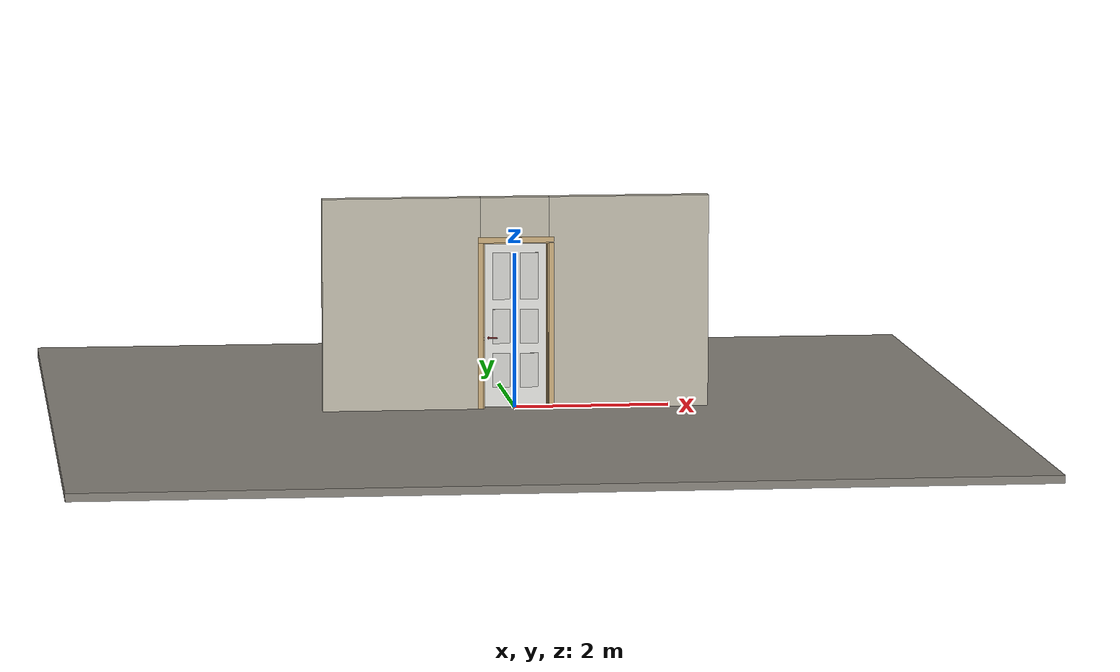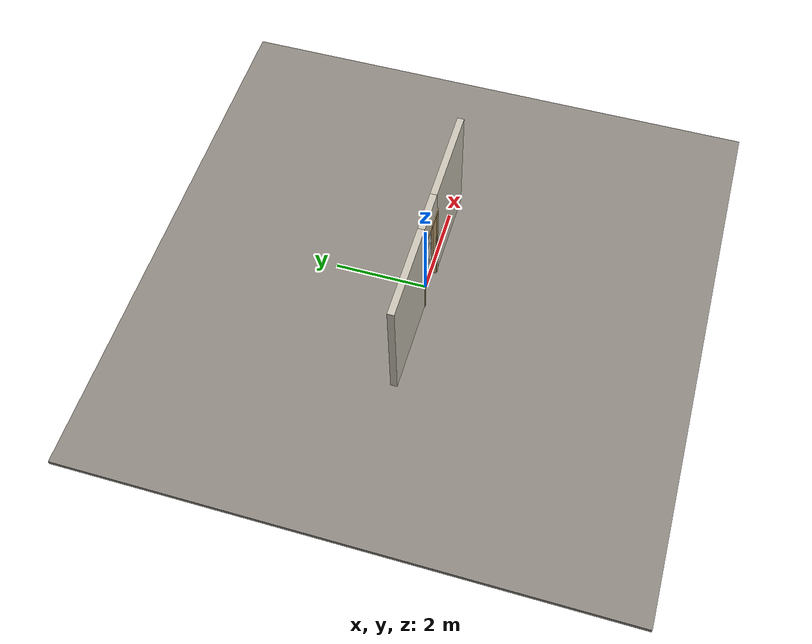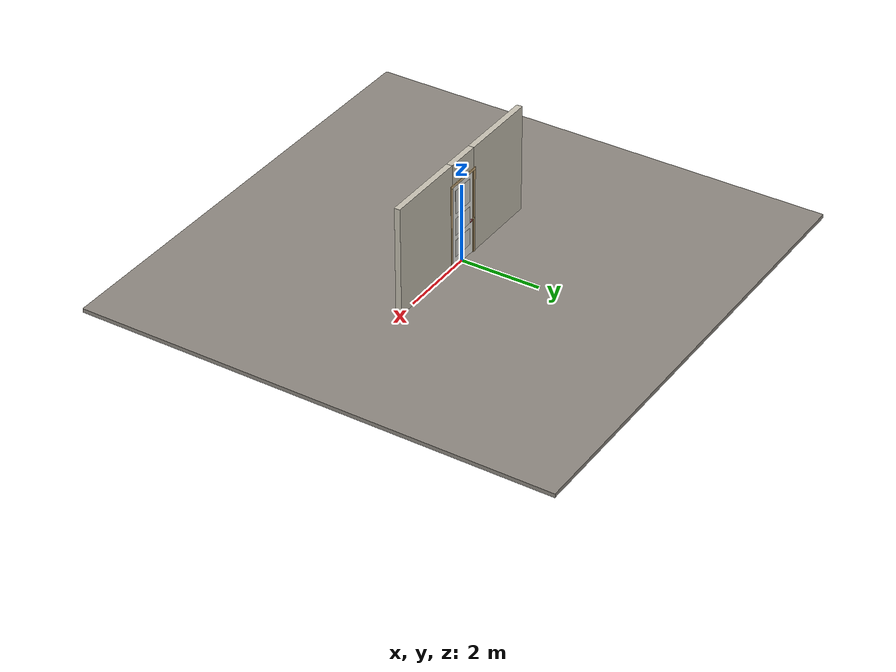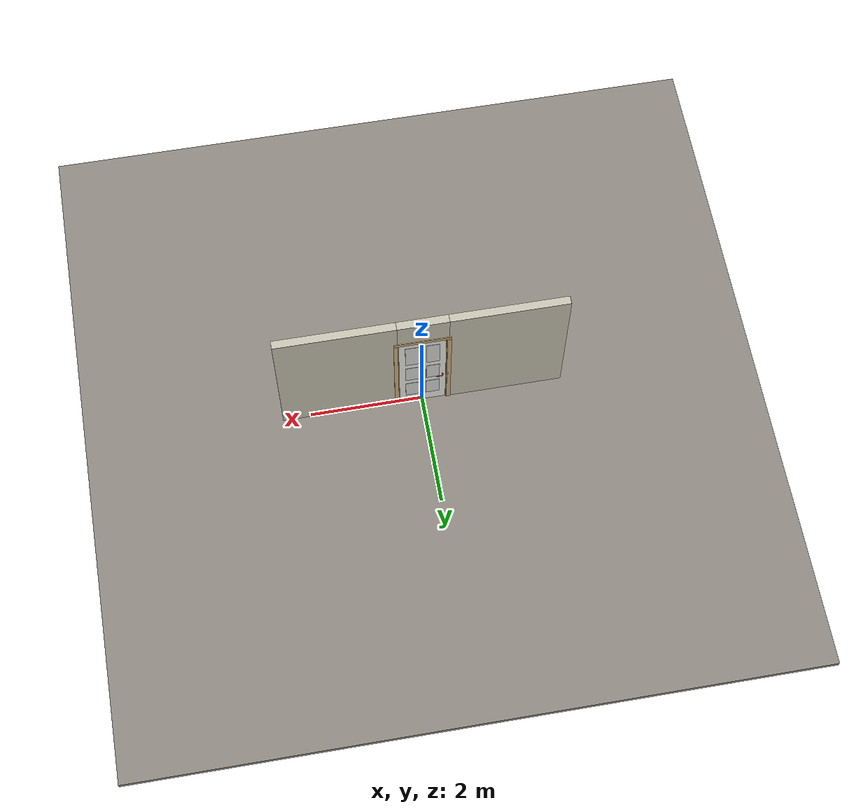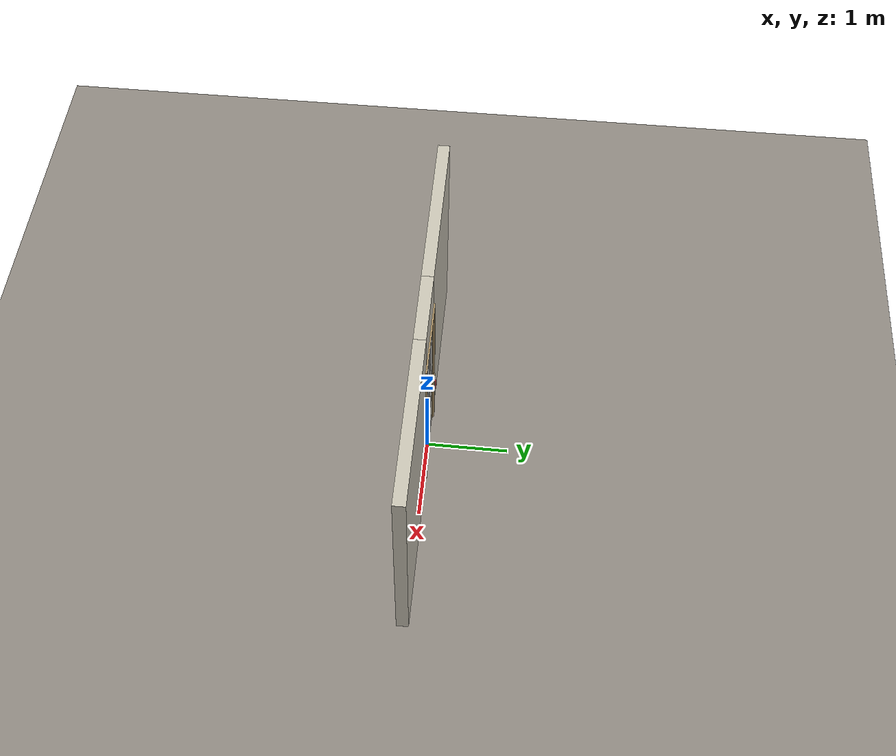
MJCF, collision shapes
<?xml version="1.0" ?>
<mujoco model="db0475_swing_single_full">
  <compiler angle="radian" meshdir="../../hardware" texturedir="../../textures" autolimits="true" inertiafromgeom="false"/>
  <option timestep="0.002" integrator="implicitfast" cone="elliptic" impratio="10" noslip_iterations="3">
    <flag multiccd="enable"/>
  </option>
  <size memory="16M"/>
  <default>
    <geom condim="4" solref="0.005 1" solimp="0.95 0.99 0.001"/>
    <joint solreflimit="0.005 1" solimplimit="0.95 0.99 0.001"/>
    <tendon solreflimit="0.005 1"/>
    <equality solref="0.002 1"/>
  </default>
  <visual>
    <headlight ambient="0.4 0.4 0.4" diffuse="0.7 0.7 0.7" specular="0.2 0.2 0.2"/>
    <quality shadowsize="4096"/>
    <map znear="0.01" zfar="60"/>
  </visual>
  <asset>
    <mesh name="hinge_9ae1f9b7de" file="hinge_9ae1f9b7de.obj"/>
    <mesh name="hinge_jamb_50e97ebc96" file="hinge_jamb_50e97ebc96.obj"/>
    <mesh name="lever_748f08efca" file="lever_748f08efca.obj"/>
    <material name="mat_floor" rgba="0.55 0.53 0.5 1" specular="0.2" shininess="0.15" reflectance="0"/>
    <material name="mat_wall" rgba="0.78 0.76 0.7 1" specular="0.2" shininess="0.1" reflectance="0"/>
    <material name="mat_leaf" rgba="0.93 0.93 0.91 1" specular="0.2" shininess="0.33" reflectance="0"/>
    <material name="mat_leaf_panel" rgba="0.856 0.856 0.837 1" specular="0.2" shininess="0.33" reflectance="0"/>
    <material name="mat_hinge" rgba="0.65 0.66 0.68 1" specular="0.74" shininess="0.5" reflectance="0.36"/>
    <material name="mat_op_chrome" rgba="0.9 0.9 0.92 1" specular="0.8" shininess="0.9" reflectance="0.4"/>
    <material name="mat_trim" rgba="0.85 0.66 0.3 1" specular="0.8" shininess="0.75" reflectance="0.4"/>
    <material name="mat_bolt" rgba="0.85 0.66 0.3 1" specular="0.8" shininess="0.75" reflectance="0.4"/>
    <material name="mat_frame" rgba="0.82 0.7 0.5 1" specular="0.2" shininess="0.45" reflectance="0"/>
    <texture name="skybox" type="skybox" builtin="gradient" rgb1="0.6 0.7 0.85" rgb2="0.9 0.92 0.95" width="256" height="256"/>
  </asset>
  <worldbody>
    <light name="sun" pos="1.5 -2.5 4" dir="-0.3 0.5 -0.8" directional="true" diffuse="0.8 0.8 0.8" specular="0.3 0.3 0.3" castshadow="true"/>
    <light name="fill" pos="-1.5 2.5 3" dir="0.3 -0.5 -0.7" directional="true" diffuse="0.35 0.35 0.4" castshadow="false"/>
    <camera name="robot_view" pos="0 -2.685812 1.812087" xyaxes="1 0 0 0 0.26963 0.962964" fovy="52"/>
    <camera name="far_view" pos="0 2.589812 1.812087" xyaxes="-1 0 0 0 -0.26963 0.962964" fovy="52"/>
    <camera name="iso" pos="-2.004737 -2.263762 2.234138" xyaxes="0.741536 -0.670913 0 0.242917 0.268487 0.932151" fovy="46"/>
    <camera name="detail_handle" pos="-0.0764 -0.8725 1.194" xyaxes="0.97561 0.219512 0 -0.070934 0.315262 0.94635" fovy="38"/>
    <geom name="floor" type="box" size="6 6 0.05" pos="0 0 -0.05" material="mat_floor" group="0" contype="1" conaffinity="1" friction="0.8 0.005 0.0001" density="2400"/>
    <geom name="wall_left" type="box" size="1.0205 0.0725 1.3735" pos="-1.4795 -0.048 1.3735" material="mat_wall" group="0" contype="1" conaffinity="1" friction="0.6 0.005 0.0001" density="800"/>
    <geom name="wall_right" type="box" size="1.0355 0.0725 1.3735" pos="1.4645 -0.048 1.3735" material="mat_wall" group="0" contype="1" conaffinity="1" friction="0.6 0.005 0.0001" density="800"/>
    <geom name="wall_header" type="box" size="0.444 0.0725 0.2755" pos="-0.015 -0.048 2.4715" material="mat_wall" group="0" contype="1" conaffinity="1" friction="0.6 0.005 0.0001" density="800"/>
    <geom name="hinge_0_jamb" type="mesh" mesh="hinge_jamb_50e97ebc96" pos="0.407 0.0245 0.259" quat="0 0 0 1" material="mat_hinge" group="1" contype="0" conaffinity="0" density="7850"/>
    <geom name="hinge_1_jamb" type="mesh" mesh="hinge_jamb_50e97ebc96" pos="0.407 0.0245 1.076" quat="0 0 0 1" material="mat_hinge" group="1" contype="0" conaffinity="0" density="7850"/>
    <geom name="hinge_2_jamb" type="mesh" mesh="hinge_jamb_50e97ebc96" pos="0.407 0.0245 1.963" quat="0 0 0 1" material="mat_hinge" group="1" contype="0" conaffinity="0" density="7850"/>
    <geom name="jamb_hinge" type="box" size="0.0095 0.0725 1.0735" pos="0.4195 -0.048 1.0735" material="mat_frame" group="0" contype="1" conaffinity="1" friction="0.6 0.005 0.0001" density="400"/>
    <geom name="strike_914_wall_n" type="box" size="0.0245 0.056325 0.0167" pos="-0.4345 -0.064175 0.914" material="mat_frame" group="0" contype="1" conaffinity="1" friction="0.6 0.005 0.0001" density="400"/>
    <geom name="strike_914_wall_p" type="box" size="0.0245 0.008 0.0167" pos="-0.4345 0.01585 0.914" material="mat_frame" group="0" contype="1" conaffinity="1" friction="0.6 0.005 0.0001" density="400"/>
    <geom name="strike_914_ramp" type="box" size="0.0245 0.01649 0.0167" pos="-0.439136 0.028673 0.914" quat="0.977148 0 0 0.212558" material="mat_frame" group="0" contype="1" conaffinity="1" friction="0.12 0.005 0.0001" density="400"/>
    <geom name="strike_914_back" type="box" size="0.01615 0.00785 0.0167" pos="-0.44285 0 0.914" material="mat_frame" group="0" contype="1" conaffinity="1" friction="0.6 0.005 0.0001" density="400"/>
    <geom name="jamb_strike_0" type="box" size="0.0245 0.0725 0.44865" pos="-0.4345 -0.048 0.44865" material="mat_frame" group="0" contype="1" conaffinity="1" friction="0.6 0.005 0.0001" density="400"/>
    <geom name="jamb_strike_1" type="box" size="0.0245 0.0725 0.60815" pos="-0.4345 -0.048 1.53885" material="mat_frame" group="0" contype="1" conaffinity="1" friction="0.6 0.005 0.0001" density="400"/>
    <geom name="jamb_head" type="box" size="0.444 0.0725 0.0095" pos="-0.015 -0.048 2.1565" material="mat_frame" group="0" contype="1" conaffinity="1" friction="0.6 0.005 0.0001" density="400"/>
    <geom name="head_stud" type="box" size="0.444 0.0725 0.015" pos="-0.015 -0.048 2.181" material="mat_wall" group="0" contype="1" conaffinity="1" friction="0.6 0.005 0.0001" density="500"/>
    <geom name="stop_hinge" type="box" size="0.0055 0.016 1.0735" pos="0.4045 -0.034 1.0735" material="mat_frame" group="0" contype="1" conaffinity="1" friction="0.6 0.005 0.0001" density="400"/>
    <geom name="stop_strike" type="box" size="0.0055 0.016 1.0735" pos="-0.4045 -0.034 1.0735" material="mat_frame" group="0" contype="1" conaffinity="1" friction="0.6 0.005 0.0001" density="400"/>
    <geom name="stop_head" type="box" size="0.41 0.016 0.0055" pos="0 -0.034 2.1415" material="mat_frame" group="0" contype="1" conaffinity="1" friction="0.6 0.005 0.0001" density="400"/>
    <geom name="casing_l_n" type="box" size="0.035 0.008 1.083" pos="-0.459 -0.1285 1.0735" material="mat_frame" group="2" contype="0" conaffinity="0" density="400"/>
    <geom name="casing_r_n" type="box" size="0.035 0.008 1.083" pos="0.459 -0.1285 1.0735" material="mat_frame" group="2" contype="0" conaffinity="0" density="400"/>
    <geom name="casing_h_n" type="box" size="0.494 0.008 0.035" pos="0 -0.1285 2.196" material="mat_frame" group="2" contype="0" conaffinity="0" density="400"/>
    <geom name="casing_l_p" type="box" size="0.035 0.008 1.083" pos="-0.459 0.0325 1.0735" material="mat_frame" group="2" contype="0" conaffinity="0" density="400"/>
    <geom name="casing_r_p" type="box" size="0.035 0.008 1.083" pos="0.459 0.0325 1.0735" material="mat_frame" group="2" contype="0" conaffinity="0" density="400"/>
    <geom name="casing_h_p" type="box" size="0.494 0.008 0.035" pos="0 0.0325 2.196" material="mat_frame" group="2" contype="0" conaffinity="0" density="400"/>
    <site name="approach_point" pos="0 -1.5 0" quat="1 0 0 0" size="0.05" rgba="0.2 0.9 0.2 0.5" group="4"/>
    <site name="goal_point" pos="0 1.5 0" quat="1 0 0 0" size="0.05" rgba="0.2 0.9 0.2 0.5" group="4"/>
    <site name="door_plane_center" pos="0 0 1.0735" quat="1 0 0 0" size="0.02" rgba="0.2 0.9 0.2 0.5" group="4"/>
    <body name="leaf" pos="0.41 0 0">
      <inertial pos="-0.406708 0.000148 1.076134" mass="46.306001" quat="0.499802 0.500332 -0.499664 0.500202" diaginertia="2.593010018 17.607500422 20.190816263"/>
      <joint name="leaf_hinge" type="hinge" axis="0 0 -1" pos="-0.003 0.0245 0" limited="true" range="0 1.745329" damping="0.218374" frictionloss="0.462593" armature="0.02"/>
      <geom name="leaf_slab" type="box" size="0.4065 0.0175 1.067" pos="-0.4095 0 1.076" material="mat_leaf" group="0" contype="1" conaffinity="1" friction="0.4 0.005 0.0001" density="1"/>
      <geom name="leaf_panel_0_n" type="box" size="0.11575 0.003 0.221884" pos="-0.22875 -0.0205 0.485624" material="mat_leaf_panel" group="1" contype="0" conaffinity="0" density="1"/>
      <geom name="leaf_panel_0_p" type="box" size="0.11575 0.003 0.221884" pos="-0.22875 0.0205 0.485624" material="mat_leaf_panel" group="1" contype="0" conaffinity="0" density="1"/>
      <geom name="leaf_panel_1_n" type="box" size="0.11575 0.003 0.221884" pos="-0.59025 -0.0205 0.485624" material="mat_leaf_panel" group="1" contype="0" conaffinity="0" density="1"/>
      <geom name="leaf_panel_1_p" type="box" size="0.11575 0.003 0.221884" pos="-0.59025 0.0205 0.485624" material="mat_leaf_panel" group="1" contype="0" conaffinity="0" density="1"/>
      <geom name="leaf_panel_2_n" type="box" size="0.11575 0.003 0.221884" pos="-0.22875 -0.0205 1.059392" material="mat_leaf_panel" group="1" contype="0" conaffinity="0" density="1"/>
      <geom name="leaf_panel_2_p" type="box" size="0.11575 0.003 0.221884" pos="-0.22875 0.0205 1.059392" material="mat_leaf_panel" group="1" contype="0" conaffinity="0" density="1"/>
      <geom name="leaf_panel_3_n" type="box" size="0.11575 0.003 0.221884" pos="-0.59025 -0.0205 1.059392" material="mat_leaf_panel" group="1" contype="0" conaffinity="0" density="1"/>
      <geom name="leaf_panel_3_p" type="box" size="0.11575 0.003 0.221884" pos="-0.59025 0.0205 1.059392" material="mat_leaf_panel" group="1" contype="0" conaffinity="0" density="1"/>
      <geom name="leaf_panel_4_n" type="box" size="0.11575 0.003 0.302512" pos="-0.22875 -0.0205 1.713788" material="mat_leaf_panel" group="1" contype="0" conaffinity="0" density="1"/>
      <geom name="leaf_panel_4_p" type="box" size="0.11575 0.003 0.302512" pos="-0.22875 0.0205 1.713788" material="mat_leaf_panel" group="1" contype="0" conaffinity="0" density="1"/>
      <geom name="leaf_panel_5_n" type="box" size="0.11575 0.003 0.302512" pos="-0.59025 -0.0205 1.713788" material="mat_leaf_panel" group="1" contype="0" conaffinity="0" density="1"/>
      <geom name="leaf_panel_5_p" type="box" size="0.11575 0.003 0.302512" pos="-0.59025 0.0205 1.713788" material="mat_leaf_panel" group="1" contype="0" conaffinity="0" density="1"/>
      <geom name="hinge_0" type="mesh" mesh="hinge_9ae1f9b7de" pos="-0.003 0.0245 0.259" quat="0 0 0 1" material="mat_hinge" group="1" contype="0" conaffinity="0" density="7850"/>
      <geom name="hinge_1" type="mesh" mesh="hinge_9ae1f9b7de" pos="-0.003 0.0245 1.076" quat="0 0 0 1" material="mat_hinge" group="1" contype="0" conaffinity="0" density="7850"/>
      <geom name="hinge_2" type="mesh" mesh="hinge_9ae1f9b7de" pos="-0.003 0.0245 1.963" quat="0 0 0 1" material="mat_hinge" group="1" contype="0" conaffinity="0" density="7850"/>
      <geom name="leaf_latch_bolt_faceplate" type="box" size="0.0006 0.01235 0.0267" pos="-0.8154 0 0.914" material="mat_bolt" group="1" contype="0" conaffinity="0" density="8500"/>
      <site name="leaf_edge_mid" pos="-0.816 0 1.067" quat="1 0 0 0" size="0.02" rgba="0.2 0.9 0.2 0.5" group="4"/>
      <body name="leaf_handle" pos="-0.756 0 0.914">
        <inertial pos="0.024417 0 0" mass="0.839807" quat="0.707107 0 0 -0.707107" diaginertia="0.001182467 0.002815434 0.003861215"/>
        <joint name="leaf_handle_hinge" type="hinge" axis="0 1 0" limited="true" range="0 0.87" damping="0.205084" frictionloss="0.04" stiffness="0.9" springref="-0.444444" armature="0.01"/>
        <geom name="leaf_handle_spindle" type="cylinder" size="0.006 0.0255" pos="0 0 0" quat="0.707107 -0.707107 0 0" material="mat_op_chrome" group="1" contype="0" conaffinity="0" density="7850"/>
        <geom name="leaf_handle_lever_n" type="mesh" mesh="lever_748f08efca" pos="0 -0.0175 0" quat="0 0 -0.707107 0.707107" material="mat_op_chrome" group="1" contype="0" conaffinity="0" density="3000"/>
        <geom name="leaf_handle_lever_col_n" type="capsule" size="0.008 0.048" pos="0.056 -0.0725 0" quat="0.707107 0 0.707107 0" material="mat_op_chrome" group="3" contype="1" conaffinity="1" rgba="0.8 0.3 0.3 0.25" friction="0.7 0.01 0.0001" density="3000"/>
        <geom name="leaf_handle_hub_col_n" type="cylinder" size="0.012 0.022" pos="0 -0.0475 0" quat="0.707107 -0.707107 0 0" material="mat_op_chrome" group="3" contype="1" conaffinity="1" rgba="0.8 0.3 0.3 0.25" friction="0.6 0.005 0.0001" density="3000"/>
        <geom name="leaf_handle_lever_p" type="mesh" mesh="lever_748f08efca" pos="0 0.0175 0" quat="0 0 0.707107 0.707107" material="mat_op_chrome" group="1" contype="0" conaffinity="0" density="3000"/>
        <geom name="leaf_handle_lever_col_p" type="capsule" size="0.008 0.048" pos="0.056 0.0725 0" quat="0.707107 0 0.707107 0" material="mat_op_chrome" group="3" contype="1" conaffinity="1" rgba="0.8 0.3 0.3 0.25" friction="0.7 0.01 0.0001" density="3000"/>
        <geom name="leaf_handle_hub_col_p" type="cylinder" size="0.012 0.022" pos="0 0.0475 0" quat="0.707107 -0.707107 0 0" material="mat_op_chrome" group="3" contype="1" conaffinity="1" rgba="0.8 0.3 0.3 0.25" friction="0.6 0.005 0.0001" density="3000"/>
        <site name="leaf_handle_grip_n" pos="0.0896 -0.0725 0" quat="1 0 0 0" size="0.012" rgba="0.2 0.9 0.2 0.5" group="4"/>
        <site name="leaf_handle_grip_p" pos="0.0896 0.0725 0" quat="1 0 0 0" size="0.012" rgba="0.2 0.9 0.2 0.5" group="4"/>
      </body>
      <body name="leaf_latch_bolt" pos="-0.816 0 0.914">
        <inertial pos="0.00865 0 0" mass="0.041419" quat="0.92388 0.382683 0 0" diaginertia="0.000000798 0.000005598 0.000005598"/>
        <joint name="leaf_latch_bolt_slide" type="slide" axis="1 0 0" limited="true" range="0 0.0127" damping="2" frictionloss="0.3" stiffness="300" springref="-0.008333" armature="0.1"/>
        <geom name="leaf_latch_bolt_capsule" type="capsule" size="0.00635 0.015" pos="0.00865 0 0" quat="0.707107 0 -0.707107 0" material="mat_bolt" group="0" contype="1" conaffinity="1" friction="0.2 0.005 0.0001" density="8500"/>
      </body>
    </body>
  </worldbody>
  <tendon>
    <fixed name="leaf_latch_bolt_coupling" limited="true" range="0 10">
      <joint joint="leaf_latch_bolt_slide" coef="1"/>
      <joint joint="leaf_handle_hinge" coef="-0.016076"/>
    </fixed>
  </tendon>
  <sensor>
    <jointpos name="leaf_hinge_pos" joint="leaf_hinge"/>
    <jointvel name="leaf_hinge_vel" joint="leaf_hinge"/>
    <jointpos name="leaf_handle_hinge_pos" joint="leaf_handle_hinge"/>
    <jointvel name="leaf_handle_hinge_vel" joint="leaf_handle_hinge"/>
    <jointpos name="leaf_latch_bolt_slide_pos" joint="leaf_latch_bolt_slide"/>
    <jointvel name="leaf_latch_bolt_slide_vel" joint="leaf_latch_bolt_slide"/>
  </sensor>
</mujoco>
